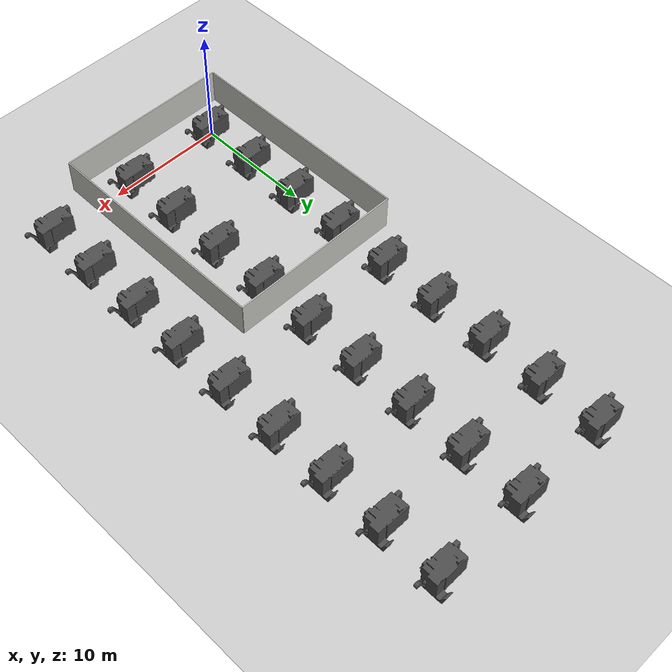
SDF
<sdf version="1.6">
 <world name="default">
  <light name="sun" type="directional">
   <pose>0 0 10 0 -0 0</pose>
   <diffuse>0.8 0.8 0.8 1</diffuse>
   <specular>0.2 0.2 0.2 1</specular>
   <attenuation>
    <range>1000</range>
    <constant>0.9</constant>
    <linear>0.01</linear>
    <quadratic>0.001</quadratic>
   </attenuation>
   <direction>-0.5 0.1 -0.9</direction>
  </light>
  <model name="ground_plane">
   <static>1</static>
   <link name="link">
    <collision name="collision">
     <geometry><plane><normal>0 0 1</normal><size>100 100</size></plane></geometry>
     <surface>
      <contact><collide_bitmask>65535</collide_bitmask></contact>
      <friction><ode><mu>100</mu><mu2>50</mu2></ode></friction>
     </surface>
    </collision>
    <visual name="visual">
     <cast_shadows>0</cast_shadows>
     <geometry><plane><normal>0 0 1</normal><size>100 100</size></plane></geometry>
     <material>
      <script><uri>file://media/materials/scripts/gazebo.material</uri><name>Gazebo/Grey</name></script>
     </material>
    </visual>
   </link>
  </model>
  <gravity>0 0 -9.8</gravity>
  <magnetic_field>6e-06 2.3e-05 -4.2e-05</magnetic_field>
  <atmosphere type="adiabatic"/>
  <physics name="default_physics" default="0" type="ode">
   <max_step_size>0.001</max_step_size>
   <real_time_factor>1</real_time_factor>
   <real_time_update_rate>1000</real_time_update_rate>
  </physics>
  <scene><ambient>0.4 0.4 0.5 1</ambient><background>0.7 0.5 0.7 1</background><shadows>1</shadows></scene>
  <spherical_coordinates>
   <surface_model>EARTH_WGS84</surface_model>
   <latitude_deg>0</latitude_deg>
   <longitude_deg>0</longitude_deg>
   <elevation>0</elevation>
   <heading_deg>0</heading_deg>
  </spherical_coordinates>
  <model name="InfiPlant">
   <include><uri>model://InfiPlant</uri></include>
   <pose>0.052968 0.040809 0 0 -0 0</pose>
  </model>
  <model name="HASS_ST_20_1_1">
   <include><uri>model://HASS_ST_20</uri><part_name>spawned_part_001_brick</part_name></include>
   <pose>0 0 1 0 0 0</pose>
  </model>
  <model name="HASS_ST_20_1_2">
   <include><uri>model://HASS_ST_20</uri><part_name>spawned_part_001_brick</part_name></include>
   <pose>8 0 1 0 0 0</pose>
  </model>
  <model name="HASS_ST_20_1_3">
   <include><uri>model://HASS_ST_20</uri><part_name>spawned_part_001_brick</part_name></include>
   <pose>16 0 1 0 0 0</pose>
  </model>
  <model name="HASS_ST_20_2_1">
   <include><uri>model://HASS_ST_20</uri><part_name>spawned_part_001_brick</part_name></include>
   <pose>0 5 1 0 0 0</pose>
  </model>
  <model name="HASS_ST_20_2_2">
   <include><uri>model://HASS_ST_20</uri><part_name>spawned_part_001_brick</part_name></include>
   <pose>8 5 1 0 0 0</pose>
  </model>
  <model name="HASS_ST_20_2_3">
   <include><uri>model://HASS_ST_20</uri><part_name>spawned_part_001_brick</part_name></include>
   <pose>16 5 1 0 0 0</pose>
  </model>
  <model name="HASS_ST_20_3_1">
   <include><uri>model://HASS_ST_20</uri><part_name>spawned_part_001_brick</part_name></include>
   <pose>0 10 1 0 0 0</pose>
  </model>
  <model name="HASS_ST_20_3_2">
   <include><uri>model://HASS_ST_20</uri><part_name>spawned_part_001_brick</part_name></include>
   <pose>8 10 1 0 0 0</pose>
  </model>
  <model name="HASS_ST_20_3_3">
   <include><uri>model://HASS_ST_20</uri><part_name>spawned_part_001_brick</part_name></include>
   <pose>16 10 1 0 0 0</pose>
  </model>
  <model name="HASS_ST_20_4_1">
   <include><uri>model://HASS_ST_20</uri><part_name>spawned_part_001_brick</part_name></include>
   <pose>0 15 1 0 0 0</pose>
  </model>
  <model name="HASS_ST_20_4_2">
   <include><uri>model://HASS_ST_20</uri><part_name>spawned_part_001_brick</part_name></include>
   <pose>8 15 1 0 0 0</pose>
  </model>
  <model name="HASS_ST_20_4_3">
   <include><uri>model://HASS_ST_20</uri><part_name>spawned_part_001_brick</part_name></include>
   <pose>16 15 1 0 0 0</pose>
  </model>
  <model name="HASS_ST_20_5_1">
   <include><uri>model://HASS_ST_20</uri><part_name>spawned_part_001_brick</part_name></include>
   <pose>0 20 1 0 0 0</pose>
  </model>
  <model name="HASS_ST_20_5_2">
   <include><uri>model://HASS_ST_20</uri><part_name>spawned_part_001_brick</part_name></include>
   <pose>8 20 1 0 0 0</pose>
  </model>
  <model name="HASS_ST_20_5_3">
   <include><uri>model://HASS_ST_20</uri><part_name>spawned_part_001_brick</part_name></include>
   <pose>16 20 1 0 0 0</pose>
  </model>
  <model name="HASS_ST_20_6_1">
   <include><uri>model://HASS_ST_20</uri><part_name>spawned_part_001_brick</part_name></include>
   <pose>0 25 1 0 0 0</pose>
  </model>
  <model name="HASS_ST_20_6_2">
   <include><uri>model://HASS_ST_20</uri><part_name>spawned_part_001_brick</part_name></include>
   <pose>8 25 1 0 0 0</pose>
  </model>
  <model name="HASS_ST_20_6_3">
   <include><uri>model://HASS_ST_20</uri><part_name>spawned_part_001_brick</part_name></include>
   <pose>16 25 1 0 0 0</pose>
  </model>
  <model name="HASS_ST_20_7_1">
   <include><uri>model://HASS_ST_20</uri><part_name>spawned_part_001_brick</part_name></include>
   <pose>0 30 1 0 0 0</pose>
  </model>
  <model name="HASS_ST_20_7_2">
   <include><uri>model://HASS_ST_20</uri><part_name>spawned_part_001_brick</part_name></include>
   <pose>8 30 1 0 0 0</pose>
  </model>
  <model name="HASS_ST_20_7_3">
   <include><uri>model://HASS_ST_20</uri><part_name>spawned_part_001_brick</part_name></include>
   <pose>16 30 1 0 0 0</pose>
  </model>
  <model name="HASS_ST_20_8_1">
   <include><uri>model://HASS_ST_20</uri><part_name>spawned_part_001_brick</part_name></include>
   <pose>0 35 1 0 0 0</pose>
  </model>
  <model name="HASS_ST_20_8_2">
   <include><uri>model://HASS_ST_20</uri><part_name>spawned_part_001_brick</part_name></include>
   <pose>8 35 1 0 0 0</pose>
  </model>
  <model name="HASS_ST_20_8_3">
   <include><uri>model://HASS_ST_20</uri><part_name>spawned_part_001_brick</part_name></include>
   <pose>16 35 1 0 0 0</pose>
  </model>
  <model name="HASS_ST_20_9_1">
   <include><uri>model://HASS_ST_20</uri><part_name>spawned_part_001_brick</part_name></include>
   <pose>0 40 1 0 0 0</pose>
  </model>
  <model name="HASS_ST_20_9_2">
   <include><uri>model://HASS_ST_20</uri><part_name>spawned_part_001_brick</part_name></include>
   <pose>8 40 1 0 0 0</pose>
  </model>
  <model name="HASS_ST_20_9_3">
   <include><uri>model://HASS_ST_20</uri><part_name>spawned_part_001_brick</part_name></include>
   <pose>16 40 1 0 0 0</pose>
  </model>
  <model name="HASS_ST_20_10_1">
   <include><uri>model://HASS_ST_20</uri><part_name>spawned_part_001_brick</part_name></include>
   <pose>0 40 1 0 0 0</pose>
  </model>
  <model name="HASS_ST_20_10_2">
   <include><uri>model://HASS_ST_20</uri><part_name>spawned_part_001_brick</part_name></include>
   <pose>8 40 1 0 0 0</pose>
  </model>
  <model name="HASS_ST_20_10_3">
   <include><uri>model://HASS_ST_20</uri><part_name>spawned_part_001_brick</part_name></include>
   <pose>16 40 1 0 0 0</pose>
  </model>
 </world>
</sdf>

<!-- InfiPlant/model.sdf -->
<sdf version='1.6'>
    <model name='InfiPlant'>
        <pose frame=''>0 0 0 0 0 0</pose>
        <link name='wall_0'>
            <collision name='wall_0_collision'>
                <geometry>
                    <box>
                        <size>15 0.10 3</size>
                    </box>
                </geometry>
                <pose frame=''>0 0 0 0 -0 0</pose>
            </collision>
            <visual name='wall_0_visual'>
                <pose frame=''>0 0 0 0 -0 0</pose>
                <geometry>
                    <box>
                        <size>15 0.10 3</size>
                    </box>
                </geometry>
                <material>
                    <script>
                        <uri>file://media/materials/scripts/gazebo.material</uri>
                        <name>Gazebo/CeilingTiled</name>
                    </script>
                    <ambient>0.996078 0.47451 0.0196078 1</ambient>
                </material>
                <meta>
                    <layer>0</layer>
                </meta>
                <transparency>0.1</transparency>
            </visual>
            <pose frame=''>4.5 -3 1.5 0 0 0</pose>
        </link>
        <link name='wall_1'>
            <collision name='wall_1_collision'>
                <geometry>
                    <box>
                        <size>15 0.10 3</size>
                    </box>
                </geometry>
                <pose frame=''>0 0 0 0 -0 0</pose>
            </collision>
            <visual name='wall_1_visual'>
                <pose frame=''>0 0 0 0 -0 0</pose>
                <geometry>
                    <box>
                        <size>15 0.10 3</size>
                    </box>
                </geometry>
                <material>
                    <script>
                        <uri>file://media/materials/scripts/gazebo.material</uri>
                        <name>Gazebo/CeilingTiled</name>
                    </script>
                    <ambient>0.996078 0.47451 0.0196078 1</ambient>
                </material>
                <meta>
                    <layer>0</layer>
                </meta>
                <transparency>0.1</transparency>
            </visual>
            <pose frame=''>4.5 17 1.5 0 0 0</pose>
        </link>
        <link name='wall_2'>
            <collision name='wall_2_collision'>
                <geometry>
                    <box>
                        <size>20 0.10 3</size>
                    </box>
                </geometry>
                <pose frame=''>0 0 0 0 -0 0</pose>
            </collision>
            <visual name='wall_2_visual'>
                <pose frame=''>0 0 0 0 -0 0</pose>
                <geometry>
                    <box>
                        <size>20 0.10 3</size>
                    </box>
                </geometry>
                <material>
                    <script>
                        <uri>file://media/materials/scripts/gazebo.material</uri>
                        <name>Gazebo/CeilingTiled</name>
                    </script>
                    <ambient>0.996078 0.47451 0.0196078 1</ambient>
                </material>
                <meta>
                    <layer>0</layer>
                </meta>
                <transparency>0.1</transparency>
            </visual>
            <pose frame=''>-3 7 1.5 0 0 1.5707963267948966</pose>
        </link>
        <link name='wall_3'>
            <collision name='wall_3_collision'>
                <geometry>
                    <box>
                        <size>20 0.10 3</size>
                    </box>
                </geometry>
                <pose frame=''>0 0 0 0 -0 0</pose>
            </collision>
            <visual name='wall_3_visual'>
                <pose frame=''>0 0 0 0 -0 0</pose>
                <geometry>
                    <box>
                        <size>20 0.10 3</size>
                    </box>
                </geometry>
                <material>
                    <script>
                        <uri>file://media/materials/scripts/gazebo.material</uri>
                        <name>Gazebo/CeilingTiled</name>
                    </script>
                    <ambient>0.996078 0.47451 0.0196078 1</ambient>
                </material>
                <meta>
                    <layer>0</layer>
                </meta>
                <transparency>0.1</transparency>
            </visual>
            <pose frame=''>12 7 1.5 0 0 1.5707963267948966</pose>
        </link>
        <static>1</static>
    </model>
</sdf>

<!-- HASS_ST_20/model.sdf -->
<sdf version="1.6">
    <model name="HASS_ST_20">

        <plugin name="spawn_plugin" filename="libpartSpawnPlugin.so">
            <part_name>spawned_part_001_brick</part_name>
            <!--Some dummy parameters:-->
            <fdm_addr>127.0.0.1</fdm_addr>
            <imuName>goshawk200/imu_link::imu_sensor</imuName>
            <connectionTimeoutMaxCount>5</connectionTimeoutMaxCount>

            <motor>
                <maxRpm>3200</maxRpm>
                <motor_constant>0.001</motor_constant>
                <rotor_drag_coefficient>1e-05</rotor_drag_coefficient>
                <moment_constant>0.1</moment_constant>
                <rolling_moment_coefficient>0.000001</rolling_moment_coefficient>
                <rotorVelocitySlowdownSim>10</rotorVelocitySlowdownSim>
            </motor>

            <rotor id="0">
                <jointName>goshawk200::rotor_0_joint</jointName>
                <linkName>goshawk200::rotor_0</linkName>
                <turningDirection>ccw</turningDirection>
            </rotor>
        </plugin>
        <static>0</static>

        <pose>0 0 0.0 0 0 0</pose>

        <link name='base_link'>
            <inertial>
                <pose>0 0 0 0 0 0</pose>
                <mass>4500</mass>
                <inertia>
                    <ixx>10000.02</ixx>
                    <ixy>0</ixy>
                    <ixz>0</ixz>
                    <iyy>10000.02</iyy>
                    <iyz>0</iyz>
                    <izz>10000.6</izz>
                </inertia>
            </inertial>
            <collision name='base_link_collision'>
                <pose>0 0.75 0 0 0 0</pose>
                <geometry>
                    <mesh>
                        <uri>model://HASS_ST_20/HASS_ST_20.dae</uri>
                    </mesh>
                </geometry>
                <surface>
                    <contact>
                        <ode>
                            <max_vel>100.0</max_vel>
                            <min_depth>0.001</min_depth>
                        </ode>
                    </contact>
                    <friction>
                        <ode>
                            <mu>2.0</mu>
                            <mu2>2.0</mu2>
                        </ode>
                    </friction>
                </surface>
            </collision>
            <visual name='base_link_visual'>
                <pose>0 0.75 0 0 0 0</pose>
                <geometry>
                    <mesh>
                        <uri>model://HASS_ST_20/HASS_ST_20.dae</uri>
                    </mesh>
                </geometry>
                <material>
                    <script>
                        <name>Gazebo/DarkGrey</name>
                    </script>
                </material>
            </visual>
            <self_collide>0</self_collide>
        </link>

    </model>
</sdf>
